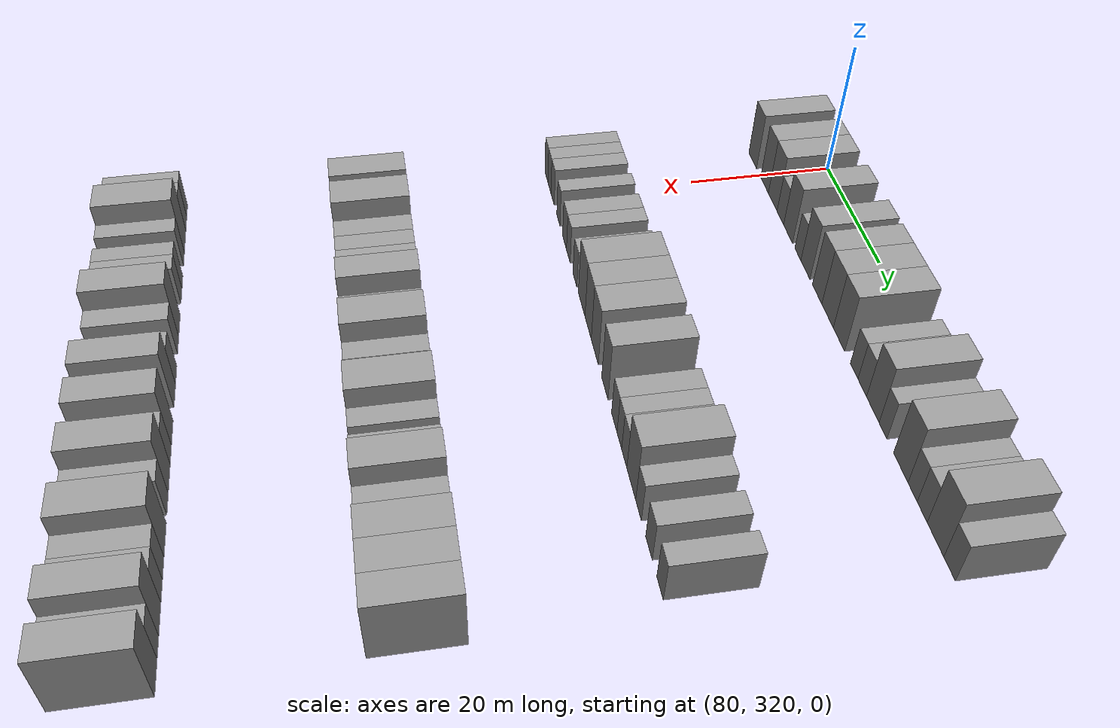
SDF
<sdf version="1.6">
 <world name="default">
  <model name="building_681">
   <static>1</static>
   <pose>85.0000 316.4107 0 0.000000 0.000000 0.000000</pose>
   <link name="link">
    <pose>0 0 4.50 0 0 0</pose>
    <collision name="collision"><geometry><box><size>10.0000 3.7704 9.0000</size></box></geometry></collision>
    <visual name="visual">
     <cast_shadows>0</cast_shadows>
     <geometry><box><size>10.0000 3.7704 9.0000</size></box></geometry>
     <material>
      <script>
       <uri>model://grey_wall/materials/scripts</uri>
       <uri>model://grey_wall/materials/textures</uri>
       <name>vrc/grey_wall</name>
      </script>
     </material>
    </visual>
   </link>
  </model>
  <model name="building_682">
   <static>1</static>
   <pose>85.0000 322.0993 0 0.000000 0.000000 0.000000</pose>
   <link name="link">
    <pose>0 0 4.50 0 0 0</pose>
    <collision name="collision"><geometry><box><size>10.0000 3.6068 9.0000</size></box></geometry></collision>
    <visual name="visual">
     <cast_shadows>0</cast_shadows>
     <geometry><box><size>10.0000 3.6068 9.0000</size></box></geometry>
     <material>
      <script>
       <uri>model://grey_wall/materials/scripts</uri>
       <uri>model://grey_wall/materials/textures</uri>
       <name>vrc/grey_wall</name>
      </script>
     </material>
    </visual>
   </link>
  </model>
  <model name="building_683">
   <static>1</static>
   <pose>85.0000 325.8701 0 0.000000 0.000000 0.000000</pose>
   <link name="link">
    <pose>0 0 4.50 0 0 0</pose>
    <collision name="collision"><geometry><box><size>10.0000 3.9348 9.0000</size></box></geometry></collision>
    <visual name="visual">
     <cast_shadows>0</cast_shadows>
     <geometry><box><size>10.0000 3.9348 9.0000</size></box></geometry>
     <material>
      <script>
       <uri>model://grey_wall/materials/scripts</uri>
       <uri>model://grey_wall/materials/textures</uri>
       <name>vrc/grey_wall</name>
      </script>
     </material>
    </visual>
   </link>
  </model>
  <model name="building_684">
   <static>1</static>
   <pose>85.0000 329.2868 0 0.000000 0.000000 0.000000</pose>
   <link name="link">
    <pose>0 0 3.00 0 0 0</pose>
    <collision name="collision"><geometry><box><size>10.0000 2.8987 6.0000</size></box></geometry></collision>
    <visual name="visual">
     <cast_shadows>0</cast_shadows>
     <geometry><box><size>10.0000 2.8987 6.0000</size></box></geometry>
     <material>
      <script>
       <uri>model://grey_wall/materials/scripts</uri>
       <uri>model://grey_wall/materials/textures</uri>
       <name>vrc/grey_wall</name>
      </script>
     </material>
    </visual>
   </link>
  </model>
  <model name="building_685">
   <static>1</static>
   <pose>85.0000 332.6490 0 0.000000 0.000000 0.000000</pose>
   <link name="link">
    <pose>0 0 4.50 0 0 0</pose>
    <collision name="collision"><geometry><box><size>10.0000 3.8256 9.0000</size></box></geometry></collision>
    <visual name="visual">
     <cast_shadows>0</cast_shadows>
     <geometry><box><size>10.0000 3.8256 9.0000</size></box></geometry>
     <material>
      <script>
       <uri>model://grey_wall/materials/scripts</uri>
       <uri>model://grey_wall/materials/textures</uri>
       <name>vrc/grey_wall</name>
      </script>
     </material>
    </visual>
   </link>
  </model>
  <model name="building_686">
   <static>1</static>
   <pose>85.0000 336.7998 0 0.000000 0.000000 0.000000</pose>
   <link name="link">
    <pose>0 0 3.00 0 0 0</pose>
    <collision name="collision"><geometry><box><size>10.0000 2.4761 6.0000</size></box></geometry></collision>
    <visual name="visual">
     <cast_shadows>0</cast_shadows>
     <geometry><box><size>10.0000 2.4761 6.0000</size></box></geometry>
     <material>
      <script>
       <uri>model://grey_wall/materials/scripts</uri>
       <uri>model://grey_wall/materials/textures</uri>
       <name>vrc/grey_wall</name>
      </script>
     </material>
    </visual>
   </link>
  </model>
  <model name="building_687">
   <static>1</static>
   <pose>85.0000 339.8692 0 0.000000 0.000000 0.000000</pose>
   <link name="link">
    <pose>0 0 4.50 0 0 0</pose>
    <collision name="collision"><geometry><box><size>10.0000 3.6625 9.0000</size></box></geometry></collision>
    <visual name="visual">
     <cast_shadows>0</cast_shadows>
     <geometry><box><size>10.0000 3.6625 9.0000</size></box></geometry>
     <material>
      <script>
       <uri>model://grey_wall/materials/scripts</uri>
       <uri>model://grey_wall/materials/textures</uri>
       <name>vrc/grey_wall</name>
      </script>
     </material>
    </visual>
   </link>
  </model>
  <model name="building_688">
   <static>1</static>
   <pose>85.0000 344.5080 0 0.000000 0.000000 0.000000</pose>
   <link name="link">
    <pose>0 0 4.50 0 0 0</pose>
    <collision name="collision"><geometry><box><size>10.0000 3.6152 9.0000</size></box></geometry></collision>
    <visual name="visual">
     <cast_shadows>0</cast_shadows>
     <geometry><box><size>10.0000 3.6152 9.0000</size></box></geometry>
     <material>
      <script>
       <uri>model://grey_wall/materials/scripts</uri>
       <uri>model://grey_wall/materials/textures</uri>
       <name>vrc/grey_wall</name>
      </script>
     </material>
    </visual>
   </link>
  </model>
  <model name="building_689">
   <static>1</static>
   <pose>85.0000 348.4435 0 0.000000 0.000000 0.000000</pose>
   <link name="link">
    <pose>0 0 4.50 0 0 0</pose>
    <collision name="collision"><geometry><box><size>10.0000 4.2559 9.0000</size></box></geometry></collision>
    <visual name="visual">
     <cast_shadows>0</cast_shadows>
     <geometry><box><size>10.0000 4.2559 9.0000</size></box></geometry>
     <material>
      <script>
       <uri>model://grey_wall/materials/scripts</uri>
       <uri>model://grey_wall/materials/textures</uri>
       <name>vrc/grey_wall</name>
      </script>
     </material>
    </visual>
   </link>
  </model>
  <model name="building_690">
   <static>1</static>
   <pose>85.0000 352.6064 0 0.000000 0.000000 0.000000</pose>
   <link name="link">
    <pose>0 0 4.50 0 0 0</pose>
    <collision name="collision"><geometry><box><size>10.0000 4.0699 9.0000</size></box></geometry></collision>
    <visual name="visual">
     <cast_shadows>0</cast_shadows>
     <geometry><box><size>10.0000 4.0699 9.0000</size></box></geometry>
     <material>
      <script>
       <uri>model://grey_wall/materials/scripts</uri>
       <uri>model://grey_wall/materials/textures</uri>
       <name>vrc/grey_wall</name>
      </script>
     </material>
    </visual>
   </link>
  </model>
  <model name="building_691">
   <static>1</static>
   <pose>85.0000 357.9178 0 0.000000 0.000000 0.000000</pose>
   <link name="link">
    <pose>0 0 3.00 0 0 0</pose>
    <collision name="collision"><geometry><box><size>10.0000 2.5530 6.0000</size></box></geometry></collision>
    <visual name="visual">
     <cast_shadows>0</cast_shadows>
     <geometry><box><size>10.0000 2.5530 6.0000</size></box></geometry>
     <material>
      <script>
       <uri>model://grey_wall/materials/scripts</uri>
       <uri>model://grey_wall/materials/textures</uri>
       <name>vrc/grey_wall</name>
      </script>
     </material>
    </visual>
   </link>
  </model>
  <model name="building_692">
   <static>1</static>
   <pose>85.0000 360.6095 0 0.000000 0.000000 0.000000</pose>
   <link name="link">
    <pose>0 0 3.00 0 0 0</pose>
    <collision name="collision"><geometry><box><size>10.0000 2.8302 6.0000</size></box></geometry></collision>
    <visual name="visual">
     <cast_shadows>0</cast_shadows>
     <geometry><box><size>10.0000 2.8302 6.0000</size></box></geometry>
     <material>
      <script>
       <uri>model://grey_wall/materials/scripts</uri>
       <uri>model://grey_wall/materials/textures</uri>
       <name>vrc/grey_wall</name>
      </script>
     </material>
    </visual>
   </link>
  </model>
  <model name="building_693">
   <static>1</static>
   <pose>85.0000 364.0198 0 0.000000 0.000000 0.000000</pose>
   <link name="link">
    <pose>0 0 4.50 0 0 0</pose>
    <collision name="collision"><geometry><box><size>10.0000 3.9904 9.0000</size></box></geometry></collision>
    <visual name="visual">
     <cast_shadows>0</cast_shadows>
     <geometry><box><size>10.0000 3.9904 9.0000</size></box></geometry>
     <material>
      <script>
       <uri>model://grey_wall/materials/scripts</uri>
       <uri>model://grey_wall/materials/textures</uri>
       <name>vrc/grey_wall</name>
      </script>
     </material>
    </visual>
   </link>
  </model>
  <model name="building_694">
   <static>1</static>
   <pose>85.0000 367.2369 0 0.000000 0.000000 0.000000</pose>
   <link name="link">
    <pose>0 0 3.00 0 0 0</pose>
    <collision name="collision"><geometry><box><size>10.0000 2.4440 6.0000</size></box></geometry></collision>
    <visual name="visual">
     <cast_shadows>0</cast_shadows>
     <geometry><box><size>10.0000 2.4440 6.0000</size></box></geometry>
     <material>
      <script>
       <uri>model://grey_wall/materials/scripts</uri>
       <uri>model://grey_wall/materials/textures</uri>
       <name>vrc/grey_wall</name>
      </script>
     </material>
    </visual>
   </link>
  </model>
  <model name="building_695">
   <static>1</static>
   <pose>85.0000 372.5616 0 0.000000 0.000000 0.000000</pose>
   <link name="link">
    <pose>0 0 4.50 0 0 0</pose>
    <collision name="collision"><geometry><box><size>10.0000 4.2052 9.0000</size></box></geometry></collision>
    <visual name="visual">
     <cast_shadows>0</cast_shadows>
     <geometry><box><size>10.0000 4.2052 9.0000</size></box></geometry>
     <material>
      <script>
       <uri>model://grey_wall/materials/scripts</uri>
       <uri>model://grey_wall/materials/textures</uri>
       <name>vrc/grey_wall</name>
      </script>
     </material>
    </visual>
   </link>
  </model>
  <model name="building_696">
   <static>1</static>
   <pose>85.0000 375.9601 0 0.000000 0.000000 0.000000</pose>
   <link name="link">
    <pose>0 0 3.00 0 0 0</pose>
    <collision name="collision"><geometry><box><size>10.0000 2.5918 6.0000</size></box></geometry></collision>
    <visual name="visual">
     <cast_shadows>0</cast_shadows>
     <geometry><box><size>10.0000 2.5918 6.0000</size></box></geometry>
     <material>
      <script>
       <uri>model://grey_wall/materials/scripts</uri>
       <uri>model://grey_wall/materials/textures</uri>
       <name>vrc/grey_wall</name>
      </script>
     </material>
    </visual>
   </link>
  </model>
  <model name="building_697">
   <static>1</static>
   <pose>85.0000 378.6197 0 0.000000 0.000000 0.000000</pose>
   <link name="link">
    <pose>0 0 3.00 0 0 0</pose>
    <collision name="collision"><geometry><box><size>10.0000 2.7275 6.0000</size></box></geometry></collision>
    <visual name="visual">
     <cast_shadows>0</cast_shadows>
     <geometry><box><size>10.0000 2.7275 6.0000</size></box></geometry>
     <material>
      <script>
       <uri>model://grey_wall/materials/scripts</uri>
       <uri>model://grey_wall/materials/textures</uri>
       <name>vrc/grey_wall</name>
      </script>
     </material>
    </visual>
   </link>
  </model>
  <model name="building_698">
   <static>1</static>
   <pose>85.0000 382.1628 0 0.000000 0.000000 0.000000</pose>
   <link name="link">
    <pose>0 0 4.50 0 0 0</pose>
    <collision name="collision"><geometry><box><size>10.0000 4.3586 9.0000</size></box></geometry></collision>
    <visual name="visual">
     <cast_shadows>0</cast_shadows>
     <geometry><box><size>10.0000 4.3586 9.0000</size></box></geometry>
     <material>
      <script>
       <uri>model://grey_wall/materials/scripts</uri>
       <uri>model://grey_wall/materials/textures</uri>
       <name>vrc/grey_wall</name>
      </script>
     </material>
    </visual>
   </link>
  </model>
  <model name="building_699">
   <static>1</static>
   <pose>85.0000 385.8057 0 0.000000 0.000000 0.000000</pose>
   <link name="link">
    <pose>0 0 3.00 0 0 0</pose>
    <collision name="collision"><geometry><box><size>10.0000 2.9273 6.0000</size></box></geometry></collision>
    <visual name="visual">
     <cast_shadows>0</cast_shadows>
     <geometry><box><size>10.0000 2.9273 6.0000</size></box></geometry>
     <material>
      <script>
       <uri>model://grey_wall/materials/scripts</uri>
       <uri>model://grey_wall/materials/textures</uri>
       <name>vrc/grey_wall</name>
      </script>
     </material>
    </visual>
   </link>
  </model>
  <model name="building_913">
   <static>1</static>
   <pose>115.0000 315.6768 0 0.000000 0.000000 0.000000</pose>
   <link name="link">
    <pose>0 0 3.00 0 0 0</pose>
    <collision name="collision"><geometry><box><size>10.0000 2.4586 6.0000</size></box></geometry></collision>
    <visual name="visual">
     <cast_shadows>0</cast_shadows>
     <geometry><box><size>10.0000 2.4586 6.0000</size></box></geometry>
     <material>
      <script>
       <uri>model://grey_wall/materials/scripts</uri>
       <uri>model://grey_wall/materials/textures</uri>
       <name>vrc/grey_wall</name>
      </script>
     </material>
    </visual>
   </link>
  </model>
  <model name="building_914">
   <static>1</static>
   <pose>115.0000 318.1401 0 0.000000 0.000000 0.000000</pose>
   <link name="link">
    <pose>0 0 3.00 0 0 0</pose>
    <collision name="collision"><geometry><box><size>10.0000 2.4680 6.0000</size></box></geometry></collision>
    <visual name="visual">
     <cast_shadows>0</cast_shadows>
     <geometry><box><size>10.0000 2.4680 6.0000</size></box></geometry>
     <material>
      <script>
       <uri>model://grey_wall/materials/scripts</uri>
       <uri>model://grey_wall/materials/textures</uri>
       <name>vrc/grey_wall</name>
      </script>
     </material>
    </visual>
   </link>
  </model>
  <model name="building_915">
   <static>1</static>
   <pose>115.0000 320.6905 0 0.000000 0.000000 0.000000</pose>
   <link name="link">
    <pose>0 0 3.00 0 0 0</pose>
    <collision name="collision"><geometry><box><size>10.0000 2.6327 6.0000</size></box></geometry></collision>
    <visual name="visual">
     <cast_shadows>0</cast_shadows>
     <geometry><box><size>10.0000 2.6327 6.0000</size></box></geometry>
     <material>
      <script>
       <uri>model://grey_wall/materials/scripts</uri>
       <uri>model://grey_wall/materials/textures</uri>
       <name>vrc/grey_wall</name>
      </script>
     </material>
    </visual>
   </link>
  </model>
  <model name="building_916">
   <static>1</static>
   <pose>115.0000 325.2148 0 0.000000 0.000000 0.000000</pose>
   <link name="link">
    <pose>0 0 3.00 0 0 0</pose>
    <collision name="collision"><geometry><box><size>10.0000 2.4161 6.0000</size></box></geometry></collision>
    <visual name="visual">
     <cast_shadows>0</cast_shadows>
     <geometry><box><size>10.0000 2.4161 6.0000</size></box></geometry>
     <material>
      <script>
       <uri>model://grey_wall/materials/scripts</uri>
       <uri>model://grey_wall/materials/textures</uri>
       <name>vrc/grey_wall</name>
      </script>
     </material>
    </visual>
   </link>
  </model>
  <model name="building_917">
   <static>1</static>
   <pose>115.0000 329.8555 0 0.000000 0.000000 0.000000</pose>
   <link name="link">
    <pose>0 0 3.00 0 0 0</pose>
    <collision name="collision"><geometry><box><size>10.0000 2.8653 6.0000</size></box></geometry></collision>
    <visual name="visual">
     <cast_shadows>0</cast_shadows>
     <geometry><box><size>10.0000 2.8653 6.0000</size></box></geometry>
     <material>
      <script>
       <uri>model://grey_wall/materials/scripts</uri>
       <uri>model://grey_wall/materials/textures</uri>
       <name>vrc/grey_wall</name>
      </script>
     </material>
    </visual>
   </link>
  </model>
  <model name="building_918">
   <static>1</static>
   <pose>115.0000 332.6065 0 0.000000 0.000000 0.000000</pose>
   <link name="link">
    <pose>0 0 3.00 0 0 0</pose>
    <collision name="collision"><geometry><box><size>10.0000 2.6366 6.0000</size></box></geometry></collision>
    <visual name="visual">
     <cast_shadows>0</cast_shadows>
     <geometry><box><size>10.0000 2.6366 6.0000</size></box></geometry>
     <material>
      <script>
       <uri>model://grey_wall/materials/scripts</uri>
       <uri>model://grey_wall/materials/textures</uri>
       <name>vrc/grey_wall</name>
      </script>
     </material>
    </visual>
   </link>
  </model>
  <model name="building_919">
   <static>1</static>
   <pose>115.0000 337.2706 0 0.000000 0.000000 0.000000</pose>
   <link name="link">
    <pose>0 0 3.00 0 0 0</pose>
    <collision name="collision"><geometry><box><size>10.0000 2.6916 6.0000</size></box></geometry></collision>
    <visual name="visual">
     <cast_shadows>0</cast_shadows>
     <geometry><box><size>10.0000 2.6916 6.0000</size></box></geometry>
     <material>
      <script>
       <uri>model://grey_wall/materials/scripts</uri>
       <uri>model://grey_wall/materials/textures</uri>
       <name>vrc/grey_wall</name>
      </script>
     </material>
    </visual>
   </link>
  </model>
  <model name="building_920">
   <static>1</static>
   <pose>115.0000 341.8025 0 0.000000 0.000000 0.000000</pose>
   <link name="link">
    <pose>0 0 4.50 0 0 0</pose>
    <collision name="collision"><geometry><box><size>10.0000 4.3723 9.0000</size></box></geometry></collision>
    <visual name="visual">
     <cast_shadows>0</cast_shadows>
     <geometry><box><size>10.0000 4.3723 9.0000</size></box></geometry>
     <material>
      <script>
       <uri>model://grey_wall/materials/scripts</uri>
       <uri>model://grey_wall/materials/textures</uri>
       <name>vrc/grey_wall</name>
      </script>
     </material>
    </visual>
   </link>
  </model>
  <model name="building_921">
   <static>1</static>
   <pose>115.0000 345.9900 0 0.000000 0.000000 0.000000</pose>
   <link name="link">
    <pose>0 0 4.50 0 0 0</pose>
    <collision name="collision"><geometry><box><size>10.0000 4.0027 9.0000</size></box></geometry></collision>
    <visual name="visual">
     <cast_shadows>0</cast_shadows>
     <geometry><box><size>10.0000 4.0027 9.0000</size></box></geometry>
     <material>
      <script>
       <uri>model://grey_wall/materials/scripts</uri>
       <uri>model://grey_wall/materials/textures</uri>
       <name>vrc/grey_wall</name>
      </script>
     </material>
    </visual>
   </link>
  </model>
  <model name="building_922">
   <static>1</static>
   <pose>115.0000 350.1486 0 0.000000 0.000000 0.000000</pose>
   <link name="link">
    <pose>0 0 4.50 0 0 0</pose>
    <collision name="collision"><geometry><box><size>10.0000 4.3145 9.0000</size></box></geometry></collision>
    <visual name="visual">
     <cast_shadows>0</cast_shadows>
     <geometry><box><size>10.0000 4.3145 9.0000</size></box></geometry>
     <material>
      <script>
       <uri>model://grey_wall/materials/scripts</uri>
       <uri>model://grey_wall/materials/textures</uri>
       <name>vrc/grey_wall</name>
      </script>
     </material>
    </visual>
   </link>
  </model>
  <model name="building_923">
   <static>1</static>
   <pose>115.0000 356.1270 0 0.000000 0.000000 0.000000</pose>
   <link name="link">
    <pose>0 0 4.50 0 0 0</pose>
    <collision name="collision"><geometry><box><size>10.0000 3.6424 9.0000</size></box></geometry></collision>
    <visual name="visual">
     <cast_shadows>0</cast_shadows>
     <geometry><box><size>10.0000 3.6424 9.0000</size></box></geometry>
     <material>
      <script>
       <uri>model://grey_wall/materials/scripts</uri>
       <uri>model://grey_wall/materials/textures</uri>
       <name>vrc/grey_wall</name>
      </script>
     </material>
    </visual>
   </link>
  </model>
  <model name="building_924">
   <static>1</static>
   <pose>115.0000 361.4267 0 0.000000 0.000000 0.000000</pose>
   <link name="link">
    <pose>0 0 3.00 0 0 0</pose>
    <collision name="collision"><geometry><box><size>10.0000 2.9569 6.0000</size></box></geometry></collision>
    <visual name="visual">
     <cast_shadows>0</cast_shadows>
     <geometry><box><size>10.0000 2.9569 6.0000</size></box></geometry>
     <material>
      <script>
       <uri>model://grey_wall/materials/scripts</uri>
       <uri>model://grey_wall/materials/textures</uri>
       <name>vrc/grey_wall</name>
      </script>
     </material>
    </visual>
   </link>
  </model>
  <model name="building_925">
   <static>1</static>
   <pose>115.0000 364.1305 0 0.000000 0.000000 0.000000</pose>
   <link name="link">
    <pose>0 0 3.00 0 0 0</pose>
    <collision name="collision"><geometry><box><size>10.0000 2.4508 6.0000</size></box></geometry></collision>
    <visual name="visual">
     <cast_shadows>0</cast_shadows>
     <geometry><box><size>10.0000 2.4508 6.0000</size></box></geometry>
     <material>
      <script>
       <uri>model://grey_wall/materials/scripts</uri>
       <uri>model://grey_wall/materials/textures</uri>
       <name>vrc/grey_wall</name>
      </script>
     </material>
    </visual>
   </link>
  </model>
  <model name="building_926">
   <static>1</static>
   <pose>115.0000 366.6886 0 0.000000 0.000000 0.000000</pose>
   <link name="link">
    <pose>0 0 3.00 0 0 0</pose>
    <collision name="collision"><geometry><box><size>10.0000 2.6654 6.0000</size></box></geometry></collision>
    <visual name="visual">
     <cast_shadows>0</cast_shadows>
     <geometry><box><size>10.0000 2.6654 6.0000</size></box></geometry>
     <material>
      <script>
       <uri>model://grey_wall/materials/scripts</uri>
       <uri>model://grey_wall/materials/textures</uri>
       <name>vrc/grey_wall</name>
      </script>
     </material>
    </visual>
   </link>
  </model>
  <model name="building_927">
   <static>1</static>
   <pose>115.0000 370.2358 0 0.000000 0.000000 0.000000</pose>
   <link name="link">
    <pose>0 0 4.50 0 0 0</pose>
    <collision name="collision"><geometry><box><size>10.0000 4.4289 9.0000</size></box></geometry></collision>
    <visual name="visual">
     <cast_shadows>0</cast_shadows>
     <geometry><box><size>10.0000 4.4289 9.0000</size></box></geometry>
     <material>
      <script>
       <uri>model://grey_wall/materials/scripts</uri>
       <uri>model://grey_wall/materials/textures</uri>
       <name>vrc/grey_wall</name>
      </script>
     </material>
    </visual>
   </link>
  </model>
  <model name="building_928">
   <static>1</static>
   <pose>115.0000 373.8141 0 0.000000 0.000000 0.000000</pose>
   <link name="link">
    <pose>0 0 3.00 0 0 0</pose>
    <collision name="collision"><geometry><box><size>10.0000 2.7278 6.0000</size></box></geometry></collision>
    <visual name="visual">
     <cast_shadows>0</cast_shadows>
     <geometry><box><size>10.0000 2.7278 6.0000</size></box></geometry>
     <material>
      <script>
       <uri>model://grey_wall/materials/scripts</uri>
       <uri>model://grey_wall/materials/textures</uri>
       <name>vrc/grey_wall</name>
      </script>
     </material>
    </visual>
   </link>
  </model>
  <model name="building_929">
   <static>1</static>
   <pose>115.0000 378.6697 0 0.000000 0.000000 0.000000</pose>
   <link name="link">
    <pose>0 0 3.00 0 0 0</pose>
    <collision name="collision"><geometry><box><size>10.0000 2.9833 6.0000</size></box></geometry></collision>
    <visual name="visual">
     <cast_shadows>0</cast_shadows>
     <geometry><box><size>10.0000 2.9833 6.0000</size></box></geometry>
     <material>
      <script>
       <uri>model://grey_wall/materials/scripts</uri>
       <uri>model://grey_wall/materials/textures</uri>
       <name>vrc/grey_wall</name>
      </script>
     </material>
    </visual>
   </link>
  </model>
  <model name="building_930">
   <static>1</static>
   <pose>115.0000 383.5480 0 0.000000 0.000000 0.000000</pose>
   <link name="link">
    <pose>0 0 3.00 0 0 0</pose>
    <collision name="collision"><geometry><box><size>10.0000 2.7733 6.0000</size></box></geometry></collision>
    <visual name="visual">
     <cast_shadows>0</cast_shadows>
     <geometry><box><size>10.0000 2.7733 6.0000</size></box></geometry>
     <material>
      <script>
       <uri>model://grey_wall/materials/scripts</uri>
       <uri>model://grey_wall/materials/textures</uri>
       <name>vrc/grey_wall</name>
      </script>
     </material>
    </visual>
   </link>
  </model>
  <model name="building_1150">
   <static>1</static>
   <pose>145.0000 320.6465 0 0.000000 0.000000 0.000000</pose>
   <link name="link">
    <pose>0 0 4.50 0 0 0</pose>
    <collision name="collision"><geometry><box><size>10.0000 3.8289 9.0000</size></box></geometry></collision>
    <visual name="visual">
     <cast_shadows>0</cast_shadows>
     <geometry><box><size>10.0000 3.8289 9.0000</size></box></geometry>
     <material>
      <script>
       <uri>model://grey_wall/materials/scripts</uri>
       <uri>model://grey_wall/materials/textures</uri>
       <name>vrc/grey_wall</name>
      </script>
     </material>
    </visual>
   </link>
  </model>
  <model name="building_1151">
   <static>1</static>
   <pose>145.0000 325.7932 0 0.000000 0.000000 0.000000</pose>
   <link name="link">
    <pose>0 0 4.50 0 0 0</pose>
    <collision name="collision"><geometry><box><size>10.0000 4.4646 9.0000</size></box></geometry></collision>
    <visual name="visual">
     <cast_shadows>0</cast_shadows>
     <geometry><box><size>10.0000 4.4646 9.0000</size></box></geometry>
     <material>
      <script>
       <uri>model://grey_wall/materials/scripts</uri>
       <uri>model://grey_wall/materials/textures</uri>
       <name>vrc/grey_wall</name>
      </script>
     </material>
    </visual>
   </link>
  </model>
  <model name="building_1152">
   <static>1</static>
   <pose>145.0000 329.5238 0 0.000000 0.000000 0.000000</pose>
   <link name="link">
    <pose>0 0 3.00 0 0 0</pose>
    <collision name="collision"><geometry><box><size>10.0000 2.9966 6.0000</size></box></geometry></collision>
    <visual name="visual">
     <cast_shadows>0</cast_shadows>
     <geometry><box><size>10.0000 2.9966 6.0000</size></box></geometry>
     <material>
      <script>
       <uri>model://grey_wall/materials/scripts</uri>
       <uri>model://grey_wall/materials/textures</uri>
       <name>vrc/grey_wall</name>
      </script>
     </material>
    </visual>
   </link>
  </model>
  <model name="building_1153">
   <static>1</static>
   <pose>145.0000 332.3559 0 0.000000 0.000000 0.000000</pose>
   <link name="link">
    <pose>0 0 3.00 0 0 0</pose>
    <collision name="collision"><geometry><box><size>10.0000 2.6676 6.0000</size></box></geometry></collision>
    <visual name="visual">
     <cast_shadows>0</cast_shadows>
     <geometry><box><size>10.0000 2.6676 6.0000</size></box></geometry>
     <material>
      <script>
       <uri>model://grey_wall/materials/scripts</uri>
       <uri>model://grey_wall/materials/textures</uri>
       <name>vrc/grey_wall</name>
      </script>
     </material>
    </visual>
   </link>
  </model>
  <model name="building_1154">
   <static>1</static>
   <pose>145.0000 335.0086 0 0.000000 0.000000 0.000000</pose>
   <link name="link">
    <pose>0 0 3.00 0 0 0</pose>
    <collision name="collision"><geometry><box><size>10.0000 2.6377 6.0000</size></box></geometry></collision>
    <visual name="visual">
     <cast_shadows>0</cast_shadows>
     <geometry><box><size>10.0000 2.6377 6.0000</size></box></geometry>
     <material>
      <script>
       <uri>model://grey_wall/materials/scripts</uri>
       <uri>model://grey_wall/materials/textures</uri>
       <name>vrc/grey_wall</name>
      </script>
     </material>
    </visual>
   </link>
  </model>
  <model name="building_1155">
   <static>1</static>
   <pose>145.0000 340.1783 0 0.000000 0.000000 0.000000</pose>
   <link name="link">
    <pose>0 0 4.50 0 0 0</pose>
    <collision name="collision"><geometry><box><size>10.0000 3.7019 9.0000</size></box></geometry></collision>
    <visual name="visual">
     <cast_shadows>0</cast_shadows>
     <geometry><box><size>10.0000 3.7019 9.0000</size></box></geometry>
     <material>
      <script>
       <uri>model://grey_wall/materials/scripts</uri>
       <uri>model://grey_wall/materials/textures</uri>
       <name>vrc/grey_wall</name>
      </script>
     </material>
    </visual>
   </link>
  </model>
  <model name="building_1156">
   <static>1</static>
   <pose>145.0000 343.2546 0 0.000000 0.000000 0.000000</pose>
   <link name="link">
    <pose>0 0 3.00 0 0 0</pose>
    <collision name="collision"><geometry><box><size>10.0000 2.4507 6.0000</size></box></geometry></collision>
    <visual name="visual">
     <cast_shadows>0</cast_shadows>
     <geometry><box><size>10.0000 2.4507 6.0000</size></box></geometry>
     <material>
      <script>
       <uri>model://grey_wall/materials/scripts</uri>
       <uri>model://grey_wall/materials/textures</uri>
       <name>vrc/grey_wall</name>
      </script>
     </material>
    </visual>
   </link>
  </model>
  <model name="building_1157">
   <static>1</static>
   <pose>145.0000 347.6488 0 0.000000 0.000000 0.000000</pose>
   <link name="link">
    <pose>0 0 4.50 0 0 0</pose>
    <collision name="collision"><geometry><box><size>10.0000 4.3377 9.0000</size></box></geometry></collision>
    <visual name="visual">
     <cast_shadows>0</cast_shadows>
     <geometry><box><size>10.0000 4.3377 9.0000</size></box></geometry>
     <material>
      <script>
       <uri>model://grey_wall/materials/scripts</uri>
       <uri>model://grey_wall/materials/textures</uri>
       <name>vrc/grey_wall</name>
      </script>
     </material>
    </visual>
   </link>
  </model>
  <model name="building_1158">
   <static>1</static>
   <pose>145.0000 351.1750 0 0.000000 0.000000 0.000000</pose>
   <link name="link">
    <pose>0 0 3.00 0 0 0</pose>
    <collision name="collision"><geometry><box><size>10.0000 2.7147 6.0000</size></box></geometry></collision>
    <visual name="visual">
     <cast_shadows>0</cast_shadows>
     <geometry><box><size>10.0000 2.7147 6.0000</size></box></geometry>
     <material>
      <script>
       <uri>model://grey_wall/materials/scripts</uri>
       <uri>model://grey_wall/materials/textures</uri>
       <name>vrc/grey_wall</name>
      </script>
     </material>
    </visual>
   </link>
  </model>
  <model name="building_1159">
   <static>1</static>
   <pose>145.0000 353.9997 0 0.000000 0.000000 0.000000</pose>
   <link name="link">
    <pose>0 0 3.00 0 0 0</pose>
    <collision name="collision"><geometry><box><size>10.0000 2.9347 6.0000</size></box></geometry></collision>
    <visual name="visual">
     <cast_shadows>0</cast_shadows>
     <geometry><box><size>10.0000 2.9347 6.0000</size></box></geometry>
     <material>
      <script>
       <uri>model://grey_wall/materials/scripts</uri>
       <uri>model://grey_wall/materials/textures</uri>
       <name>vrc/grey_wall</name>
      </script>
     </material>
    </visual>
   </link>
  </model>
  <model name="building_1160">
   <static>1</static>
   <pose>145.0000 357.6816 0 0.000000 0.000000 0.000000</pose>
   <link name="link">
    <pose>0 0 4.50 0 0 0</pose>
    <collision name="collision"><geometry><box><size>10.0000 4.4292 9.0000</size></box></geometry></collision>
    <visual name="visual">
     <cast_shadows>0</cast_shadows>
     <geometry><box><size>10.0000 4.4292 9.0000</size></box></geometry>
     <material>
      <script>
       <uri>model://grey_wall/materials/scripts</uri>
       <uri>model://grey_wall/materials/textures</uri>
       <name>vrc/grey_wall</name>
      </script>
     </material>
    </visual>
   </link>
  </model>
  <model name="building_1161">
   <static>1</static>
   <pose>145.0000 361.2746 0 0.000000 0.000000 0.000000</pose>
   <link name="link">
    <pose>0 0 3.00 0 0 0</pose>
    <collision name="collision"><geometry><box><size>10.0000 2.7567 6.0000</size></box></geometry></collision>
    <visual name="visual">
     <cast_shadows>0</cast_shadows>
     <geometry><box><size>10.0000 2.7567 6.0000</size></box></geometry>
     <material>
      <script>
       <uri>model://grey_wall/materials/scripts</uri>
       <uri>model://grey_wall/materials/textures</uri>
       <name>vrc/grey_wall</name>
      </script>
     </material>
    </visual>
   </link>
  </model>
  <model name="building_1162">
   <static>1</static>
   <pose>145.0000 365.1324 0 0.000000 0.000000 0.000000</pose>
   <link name="link">
    <pose>0 0 3.00 0 0 0</pose>
    <collision name="collision"><geometry><box><size>10.0000 2.9589 6.0000</size></box></geometry></collision>
    <visual name="visual">
     <cast_shadows>0</cast_shadows>
     <geometry><box><size>10.0000 2.9589 6.0000</size></box></geometry>
     <material>
      <script>
       <uri>model://grey_wall/materials/scripts</uri>
       <uri>model://grey_wall/materials/textures</uri>
       <name>vrc/grey_wall</name>
      </script>
     </material>
    </visual>
   </link>
  </model>
  <model name="building_1163">
   <static>1</static>
   <pose>145.0000 368.6163 0 0.000000 0.000000 0.000000</pose>
   <link name="link">
    <pose>0 0 4.50 0 0 0</pose>
    <collision name="collision"><geometry><box><size>10.0000 4.0089 9.0000</size></box></geometry></collision>
    <visual name="visual">
     <cast_shadows>0</cast_shadows>
     <geometry><box><size>10.0000 4.0089 9.0000</size></box></geometry>
     <material>
      <script>
       <uri>model://grey_wall/materials/scripts</uri>
       <uri>model://grey_wall/materials/textures</uri>
       <name>vrc/grey_wall</name>
      </script>
     </material>
    </visual>
   </link>
  </model>
  <model name="building_1164">
   <static>1</static>
   <pose>145.0000 371.8560 0 0.000000 0.000000 0.000000</pose>
   <link name="link">
    <pose>0 0 3.00 0 0 0</pose>
    <collision name="collision"><geometry><box><size>10.0000 2.4705 6.0000</size></box></geometry></collision>
    <visual name="visual">
     <cast_shadows>0</cast_shadows>
     <geometry><box><size>10.0000 2.4705 6.0000</size></box></geometry>
     <material>
      <script>
       <uri>model://grey_wall/materials/scripts</uri>
       <uri>model://grey_wall/materials/textures</uri>
       <name>vrc/grey_wall</name>
      </script>
     </material>
    </visual>
   </link>
  </model>
  <model name="building_1165">
   <static>1</static>
   <pose>145.0000 377.1210 0 0.000000 0.000000 0.000000</pose>
   <link name="link">
    <pose>0 0 4.50 0 0 0</pose>
    <collision name="collision"><geometry><box><size>10.0000 4.0595 9.0000</size></box></geometry></collision>
    <visual name="visual">
     <cast_shadows>0</cast_shadows>
     <geometry><box><size>10.0000 4.0595 9.0000</size></box></geometry>
     <material>
      <script>
       <uri>model://grey_wall/materials/scripts</uri>
       <uri>model://grey_wall/materials/textures</uri>
       <name>vrc/grey_wall</name>
      </script>
     </material>
    </visual>
   </link>
  </model>
  <model name="building_1166">
   <static>1</static>
   <pose>145.0000 381.1244 0 0.000000 0.000000 0.000000</pose>
   <link name="link">
    <pose>0 0 4.50 0 0 0</pose>
    <collision name="collision"><geometry><box><size>10.0000 3.9473 9.0000</size></box></geometry></collision>
    <visual name="visual">
     <cast_shadows>0</cast_shadows>
     <geometry><box><size>10.0000 3.9473 9.0000</size></box></geometry>
     <material>
      <script>
       <uri>model://grey_wall/materials/scripts</uri>
       <uri>model://grey_wall/materials/textures</uri>
       <name>vrc/grey_wall</name>
      </script>
     </material>
    </visual>
   </link>
  </model>
  <model name="building_1167">
   <static>1</static>
   <pose>145.0000 384.9971 0 0.000000 0.000000 0.000000</pose>
   <link name="link">
    <pose>0 0 4.50 0 0 0</pose>
    <collision name="collision"><geometry><box><size>10.0000 3.7981 9.0000</size></box></geometry></collision>
    <visual name="visual">
     <cast_shadows>0</cast_shadows>
     <geometry><box><size>10.0000 3.7981 9.0000</size></box></geometry>
     <material>
      <script>
       <uri>model://grey_wall/materials/scripts</uri>
       <uri>model://grey_wall/materials/textures</uri>
       <name>vrc/grey_wall</name>
      </script>
     </material>
    </visual>
   </link>
  </model>
  <model name="building_1376">
   <static>1</static>
   <pose>175.0000 315.6560 0 0.000000 0.000000 0.000000</pose>
   <link name="link">
    <pose>0 0 3.00 0 0 0</pose>
    <collision name="collision"><geometry><box><size>10.0000 2.4643 6.0000</size></box></geometry></collision>
    <visual name="visual">
     <cast_shadows>0</cast_shadows>
     <geometry><box><size>10.0000 2.4643 6.0000</size></box></geometry>
     <material>
      <script>
       <uri>model://grey_wall/materials/scripts</uri>
       <uri>model://grey_wall/materials/textures</uri>
       <name>vrc/grey_wall</name>
      </script>
     </material>
    </visual>
   </link>
  </model>
  <model name="building_1377">
   <static>1</static>
   <pose>175.0000 318.3628 0 0.000000 0.000000 0.000000</pose>
   <link name="link">
    <pose>0 0 3.00 0 0 0</pose>
    <collision name="collision"><geometry><box><size>10.0000 2.9494 6.0000</size></box></geometry></collision>
    <visual name="visual">
     <cast_shadows>0</cast_shadows>
     <geometry><box><size>10.0000 2.9494 6.0000</size></box></geometry>
     <material>
      <script>
       <uri>model://grey_wall/materials/scripts</uri>
       <uri>model://grey_wall/materials/textures</uri>
       <name>vrc/grey_wall</name>
      </script>
     </material>
    </visual>
   </link>
  </model>
  <model name="building_1378">
   <static>1</static>
   <pose>175.0000 322.0578 0 0.000000 0.000000 0.000000</pose>
   <link name="link">
    <pose>0 0 4.50 0 0 0</pose>
    <collision name="collision"><geometry><box><size>10.0000 4.4406 9.0000</size></box></geometry></collision>
    <visual name="visual">
     <cast_shadows>0</cast_shadows>
     <geometry><box><size>10.0000 4.4406 9.0000</size></box></geometry>
     <material>
      <script>
       <uri>model://grey_wall/materials/scripts</uri>
       <uri>model://grey_wall/materials/textures</uri>
       <name>vrc/grey_wall</name>
      </script>
     </material>
    </visual>
   </link>
  </model>
  <model name="building_1379">
   <static>1</static>
   <pose>175.0000 325.5695 0 0.000000 0.000000 0.000000</pose>
   <link name="link">
    <pose>0 0 3.00 0 0 0</pose>
    <collision name="collision"><geometry><box><size>10.0000 2.5826 6.0000</size></box></geometry></collision>
    <visual name="visual">
     <cast_shadows>0</cast_shadows>
     <geometry><box><size>10.0000 2.5826 6.0000</size></box></geometry>
     <material>
      <script>
       <uri>model://grey_wall/materials/scripts</uri>
       <uri>model://grey_wall/materials/textures</uri>
       <name>vrc/grey_wall</name>
      </script>
     </material>
    </visual>
   </link>
  </model>
  <model name="building_1380">
   <static>1</static>
   <pose>175.0000 330.0883 0 0.000000 0.000000 0.000000</pose>
   <link name="link">
    <pose>0 0 3.00 0 0 0</pose>
    <collision name="collision"><geometry><box><size>10.0000 2.4551 6.0000</size></box></geometry></collision>
    <visual name="visual">
     <cast_shadows>0</cast_shadows>
     <geometry><box><size>10.0000 2.4551 6.0000</size></box></geometry>
     <material>
      <script>
       <uri>model://grey_wall/materials/scripts</uri>
       <uri>model://grey_wall/materials/textures</uri>
       <name>vrc/grey_wall</name>
      </script>
     </material>
    </visual>
   </link>
  </model>
  <model name="building_1381">
   <static>1</static>
   <pose>175.0000 332.7002 0 0.000000 0.000000 0.000000</pose>
   <link name="link">
    <pose>0 0 3.00 0 0 0</pose>
    <collision name="collision"><geometry><box><size>10.0000 2.7685 6.0000</size></box></geometry></collision>
    <visual name="visual">
     <cast_shadows>0</cast_shadows>
     <geometry><box><size>10.0000 2.7685 6.0000</size></box></geometry>
     <material>
      <script>
       <uri>model://grey_wall/materials/scripts</uri>
       <uri>model://grey_wall/materials/textures</uri>
       <name>vrc/grey_wall</name>
      </script>
     </material>
    </visual>
   </link>
  </model>
  <model name="building_1382">
   <static>1</static>
   <pose>175.0000 338.0383 0 0.000000 0.000000 0.000000</pose>
   <link name="link">
    <pose>0 0 4.50 0 0 0</pose>
    <collision name="collision"><geometry><box><size>10.0000 3.9079 9.0000</size></box></geometry></collision>
    <visual name="visual">
     <cast_shadows>0</cast_shadows>
     <geometry><box><size>10.0000 3.9079 9.0000</size></box></geometry>
     <material>
      <script>
       <uri>model://grey_wall/materials/scripts</uri>
       <uri>model://grey_wall/materials/textures</uri>
       <name>vrc/grey_wall</name>
      </script>
     </material>
    </visual>
   </link>
  </model>
  <model name="building_1383">
   <static>1</static>
   <pose>175.0000 341.4472 0 0.000000 0.000000 0.000000</pose>
   <link name="link">
    <pose>0 0 3.00 0 0 0</pose>
    <collision name="collision"><geometry><box><size>10.0000 2.9099 6.0000</size></box></geometry></collision>
    <visual name="visual">
     <cast_shadows>0</cast_shadows>
     <geometry><box><size>10.0000 2.9099 6.0000</size></box></geometry>
     <material>
      <script>
       <uri>model://grey_wall/materials/scripts</uri>
       <uri>model://grey_wall/materials/textures</uri>
       <name>vrc/grey_wall</name>
      </script>
     </material>
    </visual>
   </link>
  </model>
  <model name="building_1384">
   <static>1</static>
   <pose>175.0000 346.3842 0 0.000000 0.000000 0.000000</pose>
   <link name="link">
    <pose>0 0 3.00 0 0 0</pose>
    <collision name="collision"><geometry><box><size>10.0000 2.9641 6.0000</size></box></geometry></collision>
    <visual name="visual">
     <cast_shadows>0</cast_shadows>
     <geometry><box><size>10.0000 2.9641 6.0000</size></box></geometry>
     <material>
      <script>
       <uri>model://grey_wall/materials/scripts</uri>
       <uri>model://grey_wall/materials/textures</uri>
       <name>vrc/grey_wall</name>
      </script>
     </material>
    </visual>
   </link>
  </model>
  <model name="building_1385">
   <static>1</static>
   <pose>175.0000 349.6841 0 0.000000 0.000000 0.000000</pose>
   <link name="link">
    <pose>0 0 4.50 0 0 0</pose>
    <collision name="collision"><geometry><box><size>10.0000 3.6358 9.0000</size></box></geometry></collision>
    <visual name="visual">
     <cast_shadows>0</cast_shadows>
     <geometry><box><size>10.0000 3.6358 9.0000</size></box></geometry>
     <material>
      <script>
       <uri>model://grey_wall/materials/scripts</uri>
       <uri>model://grey_wall/materials/textures</uri>
       <name>vrc/grey_wall</name>
      </script>
     </material>
    </visual>
   </link>
  </model>
  <model name="building_1386">
   <static>1</static>
   <pose>175.0000 355.3632 0 0.000000 0.000000 0.000000</pose>
   <link name="link">
    <pose>0 0 4.50 0 0 0</pose>
    <collision name="collision"><geometry><box><size>10.0000 3.7222 9.0000</size></box></geometry></collision>
    <visual name="visual">
     <cast_shadows>0</cast_shadows>
     <geometry><box><size>10.0000 3.7222 9.0000</size></box></geometry>
     <material>
      <script>
       <uri>model://grey_wall/materials/scripts</uri>
       <uri>model://grey_wall/materials/textures</uri>
       <name>vrc/grey_wall</name>
      </script>
     </material>
    </visual>
   </link>
  </model>
  <model name="building_1387">
   <static>1</static>
   <pose>175.0000 358.5764 0 0.000000 0.000000 0.000000</pose>
   <link name="link">
    <pose>0 0 3.00 0 0 0</pose>
    <collision name="collision"><geometry><box><size>10.0000 2.7042 6.0000</size></box></geometry></collision>
    <visual name="visual">
     <cast_shadows>0</cast_shadows>
     <geometry><box><size>10.0000 2.7042 6.0000</size></box></geometry>
     <material>
      <script>
       <uri>model://grey_wall/materials/scripts</uri>
       <uri>model://grey_wall/materials/textures</uri>
       <name>vrc/grey_wall</name>
      </script>
     </material>
    </visual>
   </link>
  </model>
  <model name="building_1388">
   <static>1</static>
   <pose>175.0000 361.9100 0 0.000000 0.000000 0.000000</pose>
   <link name="link">
    <pose>0 0 4.50 0 0 0</pose>
    <collision name="collision"><geometry><box><size>10.0000 3.9631 9.0000</size></box></geometry></collision>
    <visual name="visual">
     <cast_shadows>0</cast_shadows>
     <geometry><box><size>10.0000 3.9631 9.0000</size></box></geometry>
     <material>
      <script>
       <uri>model://grey_wall/materials/scripts</uri>
       <uri>model://grey_wall/materials/textures</uri>
       <name>vrc/grey_wall</name>
      </script>
     </material>
    </visual>
   </link>
  </model>
  <model name="building_1389">
   <static>1</static>
   <pose>175.0000 365.3736 0 0.000000 0.000000 0.000000</pose>
   <link name="link">
    <pose>0 0 3.00 0 0 0</pose>
    <collision name="collision"><geometry><box><size>10.0000 2.9643 6.0000</size></box></geometry></collision>
    <visual name="visual">
     <cast_shadows>0</cast_shadows>
     <geometry><box><size>10.0000 2.9643 6.0000</size></box></geometry>
     <material>
      <script>
       <uri>model://grey_wall/materials/scripts</uri>
       <uri>model://grey_wall/materials/textures</uri>
       <name>vrc/grey_wall</name>
      </script>
     </material>
    </visual>
   </link>
  </model>
  <model name="building_1390">
   <static>1</static>
   <pose>175.0000 370.0127 0 0.000000 0.000000 0.000000</pose>
   <link name="link">
    <pose>0 0 4.50 0 0 0</pose>
    <collision name="collision"><geometry><box><size>10.0000 4.3138 9.0000</size></box></geometry></collision>
    <visual name="visual">
     <cast_shadows>0</cast_shadows>
     <geometry><box><size>10.0000 4.3138 9.0000</size></box></geometry>
     <material>
      <script>
       <uri>model://grey_wall/materials/scripts</uri>
       <uri>model://grey_wall/materials/textures</uri>
       <name>vrc/grey_wall</name>
      </script>
     </material>
    </visual>
   </link>
  </model>
  <model name="building_1391">
   <static>1</static>
   <pose>175.0000 373.5505 0 0.000000 0.000000 0.000000</pose>
   <link name="link">
    <pose>0 0 3.00 0 0 0</pose>
    <collision name="collision"><geometry><box><size>10.0000 2.7620 6.0000</size></box></geometry></collision>
    <visual name="visual">
     <cast_shadows>0</cast_shadows>
     <geometry><box><size>10.0000 2.7620 6.0000</size></box></geometry>
     <material>
      <script>
       <uri>model://grey_wall/materials/scripts</uri>
       <uri>model://grey_wall/materials/textures</uri>
       <name>vrc/grey_wall</name>
      </script>
     </material>
    </visual>
   </link>
  </model>
  <model name="building_1392">
   <static>1</static>
   <pose>175.0000 376.2844 0 0.000000 0.000000 0.000000</pose>
   <link name="link">
    <pose>0 0 3.00 0 0 0</pose>
    <collision name="collision"><geometry><box><size>10.0000 2.7057 6.0000</size></box></geometry></collision>
    <visual name="visual">
     <cast_shadows>0</cast_shadows>
     <geometry><box><size>10.0000 2.7057 6.0000</size></box></geometry>
     <material>
      <script>
       <uri>model://grey_wall/materials/scripts</uri>
       <uri>model://grey_wall/materials/textures</uri>
       <name>vrc/grey_wall</name>
      </script>
     </material>
    </visual>
   </link>
  </model>
  <model name="building_1393">
   <static>1</static>
   <pose>175.0000 379.5157 0 0.000000 0.000000 0.000000</pose>
   <link name="link">
    <pose>0 0 4.50 0 0 0</pose>
    <collision name="collision"><geometry><box><size>10.0000 3.7568 9.0000</size></box></geometry></collision>
    <visual name="visual">
     <cast_shadows>0</cast_shadows>
     <geometry><box><size>10.0000 3.7568 9.0000</size></box></geometry>
     <material>
      <script>
       <uri>model://grey_wall/materials/scripts</uri>
       <uri>model://grey_wall/materials/textures</uri>
       <name>vrc/grey_wall</name>
      </script>
     </material>
    </visual>
   </link>
  </model>
  <model name="building_1394">
   <static>1</static>
   <pose>175.0000 382.6516 0 0.000000 0.000000 0.000000</pose>
   <link name="link">
    <pose>0 0 3.00 0 0 0</pose>
    <collision name="collision"><geometry><box><size>10.0000 2.5151 6.0000</size></box></geometry></collision>
    <visual name="visual">
     <cast_shadows>0</cast_shadows>
     <geometry><box><size>10.0000 2.5151 6.0000</size></box></geometry>
     <material>
      <script>
       <uri>model://grey_wall/materials/scripts</uri>
       <uri>model://grey_wall/materials/textures</uri>
       <name>vrc/grey_wall</name>
      </script>
     </material>
    </visual>
   </link>
  </model>
  <model name="building_1395">
   <static>1</static>
   <pose>175.0000 385.9050 0 0.000000 0.000000 0.000000</pose>
   <link name="link">
    <pose>0 0 4.50 0 0 0</pose>
    <collision name="collision"><geometry><box><size>10.0000 3.9916 9.0000</size></box></geometry></collision>
    <visual name="visual">
     <cast_shadows>0</cast_shadows>
     <geometry><box><size>10.0000 3.9916 9.0000</size></box></geometry>
     <material>
      <script>
       <uri>model://grey_wall/materials/scripts</uri>
       <uri>model://grey_wall/materials/textures</uri>
       <name>vrc/grey_wall</name>
      </script>
     </material>
    </visual>
   </link>
  </model>
 </world>
</sdf>
